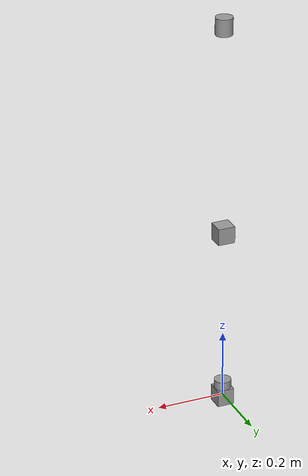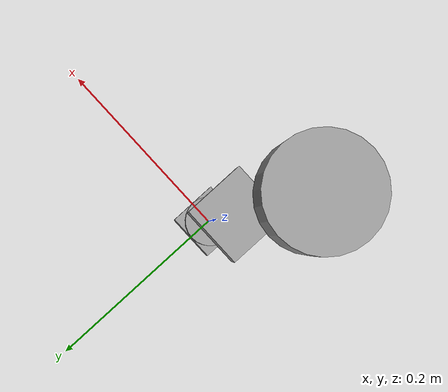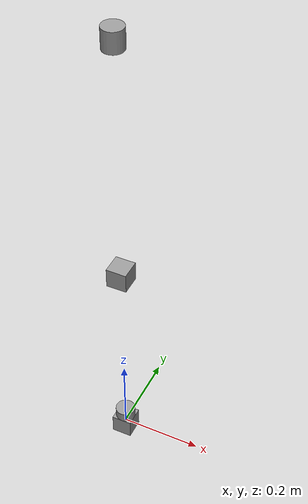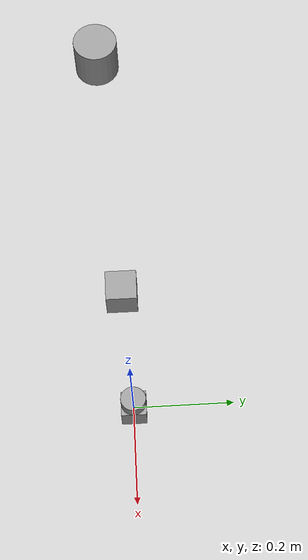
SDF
<?xml version='1.0'?>
<sdf version='1.6'>
  <model name='ForkliftSensors'>
    <link name='arm'>
      <pose frame=''>0 0 0 0 -0 0</pose>
      <inertial>
        <mass>0.1</mass>
        <inertia>
          <ixx>0.0167083</ixx>
          <ixy>0</ixy>
          <ixz>0</ixz>
          <iyy>0.00839583</iyy>
          <iyz>0</iyz>
          <izz>0.00839583</izz>
        </inertia>
        <pose frame=''>0 0 0 0 -0 0</pose>
      </inertial>
      <self_collide>0</self_collide>
      <kinematic>0</kinematic>
      <gravity>1</gravity>
      <visual name='visual'>
        <pose frame=''>0 0 0 0 -0 0</pose>
        <geometry>
          <box>
            <size>0.05 0.05 0.05</size>
          </box>
        </geometry>
        <material>
          <lighting>1</lighting>
          <script>
            <uri>file://media/materials/scripts/gazebo.material</uri>
            <name>Gazebo/Grey</name>
          </script>
          <ambient>0.3 0.3 0.3 1</ambient>
          <diffuse>0.7 0.7 0.7 1</diffuse>
          <specular>0.01 0.01 0.01 1</specular>
          <emissive>0 0 0 1</emissive>
          <shader type='vertex'>
            <normal_map>__default__</normal_map>
          </shader>
        </material>
        <transparency>0</transparency>
        <cast_shadows>1</cast_shadows>
      </visual>
      <visual name='ModelPreview_4::link_1::visual_1'>
        <pose frame=''>0 0 0.525 0 -0 0</pose>
        <geometry>
          <box>
            <size>0.05 0.05 0.05</size>
          </box>
        </geometry>
        <material>
          <lighting>1</lighting>
          <script>
            <uri>file://media/materials/scripts/gazebo.material</uri>
            <name>Gazebo/Grey</name>
          </script>
          <ambient>0.3 0.3 0.3 1</ambient>
          <diffuse>0.7 0.7 0.7 1</diffuse>
          <specular>0.01 0.01 0.01 1</specular>
          <emissive>0 0 0 1</emissive>
          <shader type='vertex'>
            <normal_map>__default__</normal_map>
          </shader>
        </material>
        <transparency>0</transparency>
        <cast_shadows>1</cast_shadows>
      </visual>
      <collision name='collision'>
        <laser_retro>0</laser_retro>
        <max_contacts>10</max_contacts>
        <pose frame=''>0 0 0 0 -0 0</pose>
        <geometry>
          <box>
            <size>0.05 0.05 0.05</size>
          </box>
        </geometry>
        <surface>
          <friction>
            <ode>
              <mu>1</mu>
              <mu2>1</mu2>
              <fdir1>0 0 0</fdir1>
              <slip1>0</slip1>
              <slip2>0</slip2>
            </ode>
            <torsional>
              <coefficient>1</coefficient>
              <patch_radius>0</patch_radius>
              <surface_radius>0</surface_radius>
              <use_patch_radius>1</use_patch_radius>
              <ode>
                <slip>0</slip>
              </ode>
            </torsional>
          </friction>
          <bounce>
            <restitution_coefficient>0</restitution_coefficient>
            <threshold>1e+06</threshold>
          </bounce>
          <contact>
            <collide_without_contact>0</collide_without_contact>
            <collide_without_contact_bitmask>1</collide_without_contact_bitmask>
            <collide_bitmask>1</collide_bitmask>
            <ode>
              <soft_cfm>0</soft_cfm>
              <soft_erp>0.2</soft_erp>
              <kp>1e+13</kp>
              <kd>1</kd>
              <max_vel>0.01</max_vel>
              <min_depth>0</min_depth>
            </ode>
            <bullet>
              <split_impulse>1</split_impulse>
              <split_impulse_penetration_threshold>-0.01</split_impulse_penetration_threshold>
              <soft_cfm>0</soft_cfm>
              <soft_erp>0.2</soft_erp>
              <kp>1e+13</kp>
              <kd>1</kd>
            </bullet>
          </contact>
        </surface>
      </collision>
    </link>
    <link name='link_erle'>
      <pose frame=''>0 0.0 0.025 0 0 0</pose>
      <inertial>
        <mass>0.1</mass>
        <inertia>
          <ixx>0.0145833</ixx>
          <ixy>0</ixy>
          <ixz>0</ixz>
          <iyy>0.0145833</iyy>
          <iyz>0</iyz>
          <izz>0.0125</izz>
        </inertia>
        <pose frame=''>0 0 0 0 -0 0</pose>
      </inertial>
      <self_collide>0</self_collide>
      <kinematic>0</kinematic>
      <sensor name='erle_imu' type='imu'>
        <update_rate>10</update_rate>
        <always_on>1</always_on>
        <pose frame=''>0 0 0 0 0 0</pose>
        <imu>
            <angular_velocity>
            <x>
              <noise type="gaussian">
                <mean>0.0</mean>
                <stddev>0.034</stddev>
              </noise>
            </x>
            <y>
              <noise type="gaussian">
                <mean>0.0</mean>
                <stddev>0.034</stddev>
              </noise>
            </y>
            <z>
              <noise type="gaussian">
                <mean>0.0</mean>
                <stddev>0.034</stddev>
              </noise>
            </z>
          </angular_velocity>
          <linear_acceleration>
            <x>
              <noise type="gaussian">
                <mean>0.0</mean>
                <stddev>0.1</stddev>
              </noise>
            </x>
            <y>
              <noise type="gaussian">
                <mean>0.0</mean>
                <stddev>0.1</stddev>
              </noise>
            </y>
            <z>
              <noise type="gaussian">
                <mean>0.0</mean>
                <stddev>0.1</stddev>
              </noise>
            </z>
          </linear_acceleration>
        </imu>
      </sensor>
      <sensor name='erle_magnetometer' type='magnetometer'>
        <update_rate>8</update_rate>
        <always_on>1</always_on>
        <magnetometer>

           <x>
            <noise type="gaussian">
              <mean>0.0</mean>
              <stddev>0.00000000344</stddev>
            </noise>
          </x>
          <y>
            <noise type="gaussian">
              <mean>0.0</mean>
              <stddev>0.00000000344</stddev>
            </noise>
          </y>
          <z>
            <noise type="gaussian">
              <mean>0.0</mean>
              <stddev>0.00000000344</stddev>
            </noise>
          </z>
        </magnetometer>
          <plugin name='magnetometer_plugin' filename='libmagnetic_distortion_plugin.so'>
            <field_strength>1e-5</field_strength>
        </plugin>
      </sensor>
      <gravity>1</gravity>
      <visual name='visual'>
        <pose frame=''>0 0 0 0 -0 0</pose>
        <geometry>
          <cylinder>
            <radius>0.025</radius>
            <length>0.05</length>
          </cylinder>
        </geometry>
        <material>
          <lighting>1</lighting>
          <script>
            <uri>file://media/materials/scripts/gazebo.material</uri>
            <name>Gazebo/Grey</name>
          </script>
          <ambient>0.3 0.3 0.3 1</ambient>
          <diffuse>0.7 0.7 0.7 1</diffuse>
          <specular>0.01 0.01 0.01 1</specular>
          <emissive>0 0 0 1</emissive>
          <shader type='vertex'>
            <normal_map>__default__</normal_map>
          </shader>
        </material>
        <transparency>0</transparency>
        <cast_shadows>1</cast_shadows>
      </visual>
      <collision name='collision'>
        <laser_retro>0</laser_retro>
        <max_contacts>10</max_contacts>
        <pose frame=''>0 0 0 0 -0 0</pose>
        <geometry>
          <cylinder>
            <radius>0.025</radius>
            <length>0.05</length>
          </cylinder>
        </geometry>
        <surface>
          <friction>
            <ode>
              <mu>1</mu>
              <mu2>1</mu2>
              <fdir1>0 0 0</fdir1>
              <slip1>0</slip1>
              <slip2>0</slip2>
            </ode>
            <torsional>
              <coefficient>1</coefficient>
              <patch_radius>0</patch_radius>
              <surface_radius>0</surface_radius>
              <use_patch_radius>1</use_patch_radius>
              <ode>
                <slip>0</slip>
              </ode>
            </torsional>
          </friction>
          <bounce>
            <restitution_coefficient>0</restitution_coefficient>
            <threshold>1e+06</threshold>
          </bounce>
          <contact>
            <collide_without_contact>0</collide_without_contact>
            <collide_without_contact_bitmask>1</collide_without_contact_bitmask>
            <collide_bitmask>1</collide_bitmask>
            <ode>
              <soft_cfm>0</soft_cfm>
              <soft_erp>0.2</soft_erp>
              <kp>1e+13</kp>
              <kd>1</kd>
              <max_vel>0.01</max_vel>
              <min_depth>0</min_depth>
            </ode>
            <bullet>
              <split_impulse>1</split_impulse>
              <split_impulse_penetration_threshold>-0.01</split_impulse_penetration_threshold>
              <soft_cfm>0</soft_cfm>
              <soft_erp>0.2</soft_erp>
              <kp>1e+13</kp>
              <kd>1</kd>
            </bullet>
          </contact>
        </surface>
      </collision>
    </link>
    <link name='link_px4flow_0'>
      <pose frame=''>0 0 0.0 0 -0 0</pose>
      <inertial>
        <mass>0.1</mass>
        <inertia>
          <ixx>0.0145833</ixx>
          <ixy>0</ixy>
          <ixz>0</ixz>
          <iyy>0.0145833</iyy>
          <iyz>0</iyz>
          <izz>0.0125</izz>
        </inertia>
        <pose frame=''>0 0 0 0 -0 0</pose>
      </inertial>
      <self_collide>0</self_collide>
      <kinematic>0</kinematic>
      <gravity>1</gravity>
      <visual name='visual'>
        <pose frame=''>0 0 0 0 -0 0</pose>
        <geometry>
          <cylinder>
            <radius>0.025</radius>
            <length>0.05</length>
          </cylinder>
        </geometry>
        <material>
          <lighting>1</lighting>
          <script>
            <uri>file://media/materials/scripts/gazebo.material</uri>
            <name>Gazebo/Grey</name>
          </script>
          <ambient>0.3 0.3 0.3 1</ambient>
          <diffuse>0.7 0.7 0.7 1</diffuse>
          <specular>0.01 0.01 0.01 1</specular>
          <emissive>0 0 0 1</emissive>
          <shader type='vertex'>
            <normal_map>__default__</normal_map>
          </shader>
        </material>
        <transparency>0</transparency>
        <cast_shadows>1</cast_shadows>
      </visual>
      <collision name='collision'>
        <laser_retro>0</laser_retro>
        <max_contacts>10</max_contacts>
        <pose frame=''>0 0 0 0 -0 0</pose>
        <geometry>
          <cylinder>
            <radius>0.025</radius>
            <length>0.05</length>
          </cylinder>
        </geometry>
        <surface>
          <friction>
            <ode>
              <mu>1</mu>
              <mu2>1</mu2>
              <fdir1>0 0 0</fdir1>
              <slip1>0</slip1>
              <slip2>0</slip2>
            </ode>
            <torsional>
              <coefficient>1</coefficient>
              <patch_radius>0</patch_radius>
              <surface_radius>0</surface_radius>
              <use_patch_radius>1</use_patch_radius>
              <ode>
                <slip>0</slip>
              </ode>
            </torsional>
          </friction>
          <bounce>
            <restitution_coefficient>0</restitution_coefficient>
            <threshold>1e+06</threshold>
          </bounce>
          <contact>
            <collide_without_contact>0</collide_without_contact>
            <collide_without_contact_bitmask>1</collide_without_contact_bitmask>
            <collide_bitmask>1</collide_bitmask>
            <ode>
              <soft_cfm>0</soft_cfm>
              <soft_erp>0.2</soft_erp>
              <kp>1e+13</kp>
              <kd>1</kd>
              <max_vel>0.01</max_vel>
              <min_depth>0</min_depth>
            </ode>
            <bullet>
              <split_impulse>1</split_impulse>
              <split_impulse_penetration_threshold>-0.01</split_impulse_penetration_threshold>
              <soft_cfm>0</soft_cfm>
              <soft_erp>0.2</soft_erp>
              <kp>1e+13</kp>
              <kd>1</kd>
            </bullet>
          </contact>
        </surface>
      </collision>
    </link>
    <link name='link_uwb'>
      <pose frame=''>0 0 1.15 0 -0 0</pose>
      <inertial>
        <mass>0.1</mass>
        <inertia>
          <ixx>0.0145833</ixx>
          <ixy>0</ixy>
          <ixz>0</ixz>
          <iyy>0.0145833</iyy>
          <iyz>0</iyz>
          <izz>0.0125</izz>
        </inertia>
        <pose frame=''>0 0 0 0 -0 0</pose>
      </inertial>
      <self_collide>0</self_collide>
      <kinematic>0</kinematic>
      <gravity>1</gravity>
      <visual name='visual'>
        <pose frame=''>0 0 0 0 -0 0</pose>
        <geometry>
          <cylinder>
            <radius>0.025</radius>
            <length>0.05</length>
          </cylinder>
        </geometry>
        <material>
          <lighting>1</lighting>
          <script>
            <uri>file://media/materials/scripts/gazebo.material</uri>
            <name>Gazebo/Grey</name>
          </script>
          <ambient>0.3 0.3 0.3 1</ambient>
          <diffuse>0.7 0.7 0.7 1</diffuse>
          <specular>0.01 0.01 0.01 1</specular>
          <emissive>0 0 0 1</emissive>
          <shader type='vertex'>
            <normal_map>__default__</normal_map>
          </shader>
        </material>
        <transparency>0</transparency>
        <cast_shadows>1</cast_shadows>
      </visual>
      <collision name='collision'>
        <laser_retro>0</laser_retro>
        <max_contacts>10</max_contacts>
        <pose frame=''>0 0 0 0 -0 0</pose>
        <geometry>
          <cylinder>
            <radius>0.025</radius>
            <length>0.05</length>
          </cylinder>
        </geometry>
        <surface>
          <friction>
            <ode>
              <mu>1</mu>
              <mu2>1</mu2>
              <fdir1>0 0 0</fdir1>
              <slip1>0</slip1>
              <slip2>0</slip2>
            </ode>
            <torsional>
              <coefficient>1</coefficient>
              <patch_radius>0</patch_radius>
              <surface_radius>0</surface_radius>
              <use_patch_radius>1</use_patch_radius>
              <ode>
                <slip>0</slip>
              </ode>
            </torsional>
          </friction>
          <bounce>
            <restitution_coefficient>0</restitution_coefficient>
            <threshold>1e+06</threshold>
          </bounce>
          <contact>
            <collide_without_contact>0</collide_without_contact>
            <collide_without_contact_bitmask>1</collide_without_contact_bitmask>
            <collide_bitmask>1</collide_bitmask>
            <ode>
              <soft_cfm>0</soft_cfm>
              <soft_erp>0.2</soft_erp>
              <kp>1e+13</kp>
              <kd>1</kd>
              <max_vel>0.01</max_vel>
              <min_depth>0</min_depth>
            </ode>
            <bullet>
              <split_impulse>1</split_impulse>
              <split_impulse_penetration_threshold>-0.01</split_impulse_penetration_threshold>
              <soft_cfm>0</soft_cfm>
              <soft_erp>0.2</soft_erp>
              <kp>1e+13</kp>
              <kd>1</kd>
            </bullet>
          </contact>
        </surface>
      </collision>
    </link>
    <joint name='base_JOINT_0_0' type='fixed'>
      <parent>arm</parent>
      <child>link_erle</child>
      <pose frame=''>0 0 0 0 -0 0</pose>
      <physics>
        <ode>
          <limit>
            <cfm>0</cfm>
            <erp>0.2</erp>
          </limit>
          <suspension>
            <cfm>0</cfm>
            <erp>0.2</erp>
          </suspension>
        </ode>
      </physics>
    </joint>
    <joint name='base_JOINT_1' type='fixed'>
      <parent>arm</parent>
      <child>link_px4flow_1</child>
      <pose frame=''>0 0 0 0 -0 0</pose>
      <physics>
        <ode>
          <limit>
            <cfm>0</cfm>
            <erp>0.2</erp>
          </limit>
          <suspension>
            <cfm>0</cfm>
            <erp>0.2</erp>
          </suspension>
        </ode>
      </physics>
    </joint>
    <joint name='base_JOINT_2' type='fixed'>
      <parent>arm</parent>
      <child>link_px4flow_0</child>
      <pose frame=''>0 0 0 0 -0 0</pose>
      <physics>
        <ode>
          <limit>
            <cfm>0</cfm>
            <erp>0.2</erp>
          </limit>
          <suspension>
            <cfm>0</cfm>
            <erp>0.2</erp>
          </suspension>
        </ode>
      </physics>
    </joint>
    <joint name='base_JOINT_3' type='fixed'>
      <parent>arm</parent>
      <child>link_uwb</child>
      <pose frame=''>0 0 0 0 -0 0</pose>
      <physics>
        <ode>
          <limit>
            <cfm>0</cfm>
            <erp>0.2</erp>
          </limit>
          <suspension>
            <cfm>0</cfm>
            <erp>0.2</erp>
          </suspension>
        </ode>
      </physics>
    </joint>
    <static>0</static>
    <allow_auto_disable>1</allow_auto_disable>
    <plugin name='gtec_gazebosensorplugins' filename='libgtec_gazebosensorplugins.so'>
      <update_rate>10</update_rate>
      <frequency>3.9936e9</frequency>
      <power>-14.3</power>
      <rx_gain>2</rx_gain>
      <tag_link>link_uwb</tag_link>
      <anchor_prefix>uwb_anchor</anchor_prefix>
      <noise type='gaussian'>
        <mean>0</mean>
        <stddev>0.0208</stddev>
      </noise>
    </plugin>
  </model>
</sdf>
